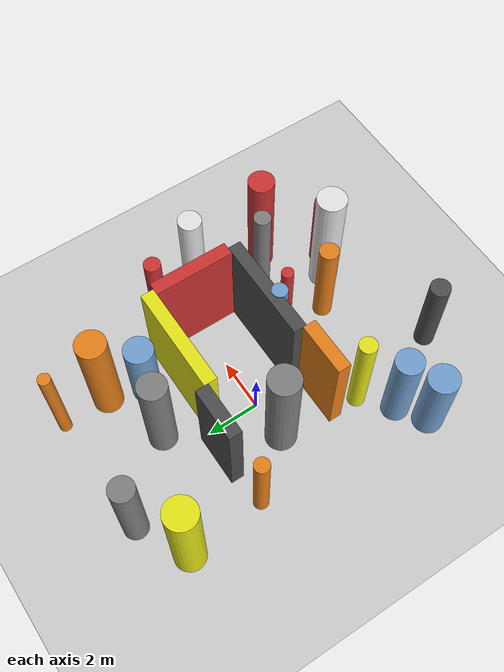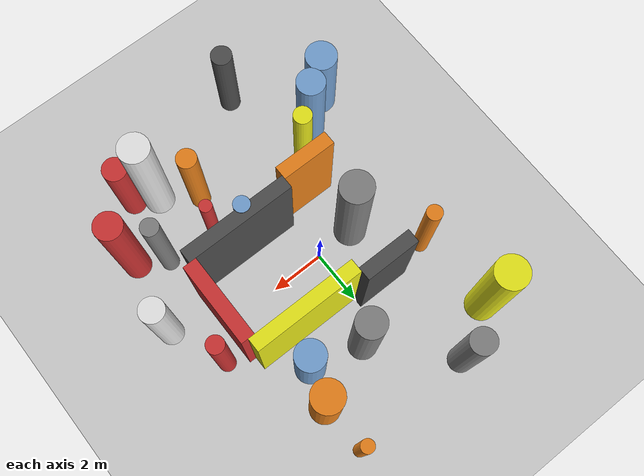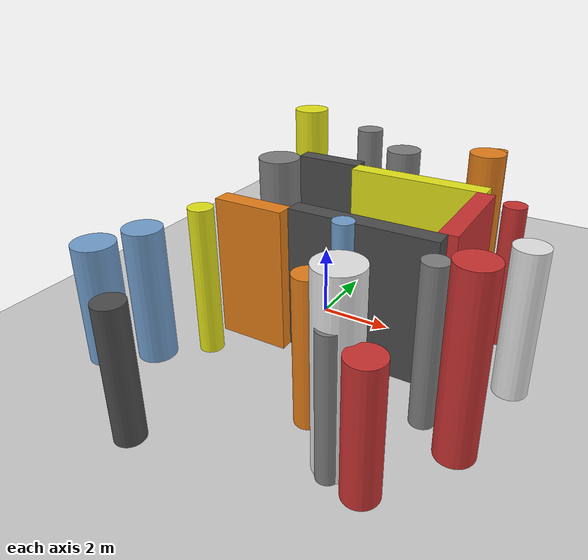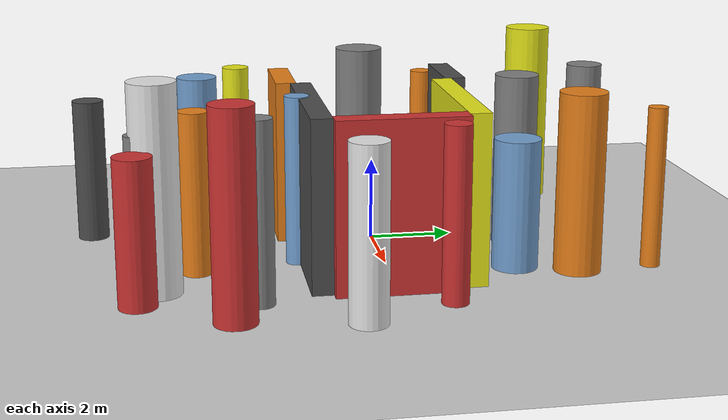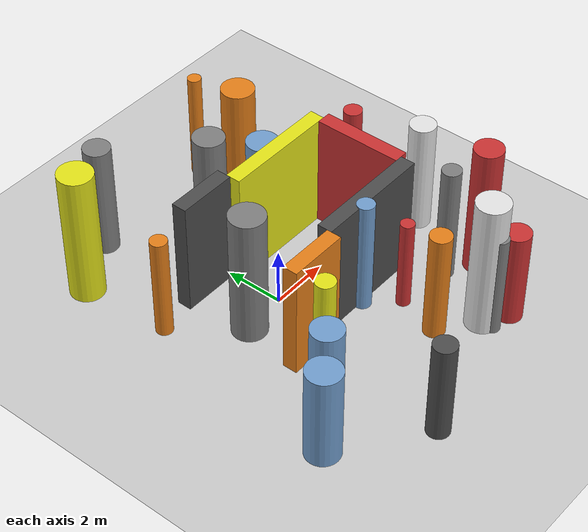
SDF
<?xml version='1.0'?>
<sdf version='1.6'>
  <world name='routeA_rl_v1__dense_recovery__rl_test__cul_de_sac_trap__000039'>
    <!-- Sun light -->
    <light name='sun' type='directional'>
      <cast_shadows>1</cast_shadows>
      <pose>0 0 10 0 0 0</pose>
      <diffuse>0.8 0.8 0.8 1</diffuse>
      <specular>0.2 0.2 0.2 1</specular>
      <attenuation>
        <range>1000</range>
        <constant>0.9</constant>
        <linear>0.01</linear>
        <quadratic>0.001</quadratic>
      </attenuation>
      <direction>-0.5 0.1 -0.9</direction>
    </light>

    <!-- Ground plane -->
    <model name='ground_plane'>
      <static>1</static>
      <link name='link'>
        <collision name='collision'>
          <geometry>
            <plane>
              <normal>0 0 1</normal>
              <size>100 100</size>
            </plane>
          </geometry>
          <surface>
            <contact>
              <collide_bitmask>65535</collide_bitmask>
              <ode/>
            </contact>
            <friction>
              <ode>
                <mu>100</mu>
                <mu2>50</mu2>
              </ode>
              <torsional><ode/></torsional>
            </friction>
            <bounce/>
          </surface>
          <max_contacts>10</max_contacts>
        </collision>
        <visual name='visual'>
          <cast_shadows>0</cast_shadows>
          <geometry>
            <plane>
              <normal>0 0 1</normal>
              <size>100 100</size>
            </plane>
          </geometry>
          <material>
            <script>
              <uri>file://media/materials/scripts/gazebo.material</uri>
              <n>Gazebo/Grey</n>
            </script>
          </material>
        </visual>
      </link>
    </model>

    <!-- Environment -->
    <magnetic_field>6e-06 2.3e-05 -4.2e-05</magnetic_field>
    <atmosphere type='adiabatic'/>
    <physics name='default_physics' default='0' type='ode'>
      <gravity>0 0 -9.8</gravity>
      <max_step_size>0.004</max_step_size>
      <real_time_factor>1</real_time_factor>
      <real_time_update_rate>250</real_time_update_rate>
    </physics>
    <scene>
      <ambient>0.4 0.4 0.4 1</ambient>
      <background>0.7 0.7 0.7 1</background>
      <shadows>1</shadows>
    </scene>
    <wind/>
    <spherical_coordinates>
      <surface_model>EARTH_WGS84</surface_model>
      <latitude_deg>0</latitude_deg>
      <longitude_deg>0</longitude_deg>
      <elevation>0</elevation>
      <heading_deg>0</heading_deg>
    </spherical_coordinates>

    <!-- ============ OBSTACLES (27) ============ -->
    <model name='trap_side_l'>
      <static>1</static>
      <link name='link'>
        <visual name='visual'>
          <geometry>
            <box>
              <size>4.0000 0.5000 4.0000</size>
            </box>
          </geometry>
          <material>
            <script>
              <n>Gazebo/DarkGrey</n>
              <uri>file://media/materials/scripts/gazebo.material</uri>
            </script>
            <ambient>0.3 0.3 0.3 1</ambient>
          </material>
        </visual>
        <collision name='collision'>
          <geometry>
            <box>
              <size>4.0000 0.5000 4.0000</size>
            </box>
          </geometry>
          <max_contacts>10</max_contacts>
          <surface>
            <contact><ode/></contact>
            <bounce/>
            <friction>
              <ode><mu>1</mu><mu2>1</mu2></ode>
              <torsional><ode/></torsional>
            </friction>
          </surface>
        </collision>
      </link>
      <pose>2.0000 -1.7500 2.0000 0 0 0.0000</pose>
    </model>

    <model name='trap_side_r'>
      <static>1</static>
      <link name='link'>
        <visual name='visual'>
          <geometry>
            <box>
              <size>4.0000 0.5000 4.0000</size>
            </box>
          </geometry>
          <material>
            <script>
              <n>Gazebo/Yellow</n>
              <uri>file://media/materials/scripts/gazebo.material</uri>
            </script>
            <ambient>0.9 0.9 0.1 1</ambient>
          </material>
        </visual>
        <collision name='collision'>
          <geometry>
            <box>
              <size>4.0000 0.5000 4.0000</size>
            </box>
          </geometry>
          <max_contacts>10</max_contacts>
          <surface>
            <contact><ode/></contact>
            <bounce/>
            <friction>
              <ode><mu>1</mu><mu2>1</mu2></ode>
              <torsional><ode/></torsional>
            </friction>
          </surface>
        </collision>
      </link>
      <pose>2.0000 1.7500 2.0000 0 0 0.0000</pose>
    </model>

    <model name='trap_back'>
      <static>1</static>
      <link name='link'>
        <visual name='visual'>
          <geometry>
            <box>
              <size>0.5000 3.0000 4.0000</size>
            </box>
          </geometry>
          <material>
            <script>
              <n>Gazebo/Red</n>
              <uri>file://media/materials/scripts/gazebo.material</uri>
            </script>
            <ambient>0.8 0.2 0.2 1</ambient>
          </material>
        </visual>
        <collision name='collision'>
          <geometry>
            <box>
              <size>0.5000 3.0000 4.0000</size>
            </box>
          </geometry>
          <max_contacts>10</max_contacts>
          <surface>
            <contact><ode/></contact>
            <bounce/>
            <friction>
              <ode><mu>1</mu><mu2>1</mu2></ode>
              <torsional><ode/></torsional>
            </friction>
          </surface>
        </collision>
      </link>
      <pose>4.0000 0.0000 2.0000 0 0 0.0000</pose>
    </model>

    <model name='trap_funnel_l'>
      <static>1</static>
      <link name='link'>
        <visual name='visual'>
          <geometry>
            <box>
              <size>2.0000 0.5000 4.0000</size>
            </box>
          </geometry>
          <material>
            <script>
              <n>Gazebo/Orange</n>
              <uri>file://media/materials/scripts/gazebo.material</uri>
            </script>
            <ambient>0.9 0.5 0.1 1</ambient>
          </material>
        </visual>
        <collision name='collision'>
          <geometry>
            <box>
              <size>2.0000 0.5000 4.0000</size>
            </box>
          </geometry>
          <max_contacts>10</max_contacts>
          <surface>
            <contact><ode/></contact>
            <bounce/>
            <friction>
              <ode><mu>1</mu><mu2>1</mu2></ode>
              <torsional><ode/></torsional>
            </friction>
          </surface>
        </collision>
      </link>
      <pose>-1.0000 -2.1000 2.0000 0 0 0.0000</pose>
    </model>

    <model name='trap_funnel_r'>
      <static>1</static>
      <link name='link'>
        <visual name='visual'>
          <geometry>
            <box>
              <size>2.0000 0.5000 4.0000</size>
            </box>
          </geometry>
          <material>
            <script>
              <n>Gazebo/DarkGrey</n>
              <uri>file://media/materials/scripts/gazebo.material</uri>
            </script>
            <ambient>0.3 0.3 0.3 1</ambient>
          </material>
        </visual>
        <collision name='collision'>
          <geometry>
            <box>
              <size>2.0000 0.5000 4.0000</size>
            </box>
          </geometry>
          <max_contacts>10</max_contacts>
          <surface>
            <contact><ode/></contact>
            <bounce/>
            <friction>
              <ode><mu>1</mu><mu2>1</mu2></ode>
              <torsional><ode/></torsional>
            </friction>
          </surface>
        </collision>
      </link>
      <pose>-1.0000 2.1000 2.0000 0 0 0.0000</pose>
    </model>

    <model name='trap_scatter_0'>
      <static>1</static>
      <link name='link'>
        <visual name='visual'>
          <geometry>
            <cylinder>
              <radius>0.5256</radius>
              <length>4.2098</length>
            </cylinder>
          </geometry>
          <material>
            <script>
              <n>Gazebo/Grey</n>
              <uri>file://media/materials/scripts/gazebo.material</uri>
            </script>
            <ambient>0.5 0.5 0.5 1</ambient>
          </material>
        </visual>
        <collision name='collision'>
          <geometry>
            <cylinder>
              <radius>0.5256</radius>
              <length>4.2098</length>
            </cylinder>
          </geometry>
          <max_contacts>10</max_contacts>
          <surface>
            <contact><ode/></contact>
            <bounce/>
            <friction>
              <ode><mu>1</mu><mu2>1</mu2></ode>
              <torsional><ode/></torsional>
            </friction>
          </surface>
        </collision>
      </link>
      <pose>0.8173 3.4344 2.1049 0 0 0.0000</pose>
    </model>

    <model name='trap_scatter_1'>
      <static>1</static>
      <link name='link'>
        <visual name='visual'>
          <geometry>
            <cylinder>
              <radius>0.3777</radius>
              <length>3.4947</length>
            </cylinder>
          </geometry>
          <material>
            <script>
              <n>Gazebo/DarkGrey</n>
              <uri>file://media/materials/scripts/gazebo.material</uri>
            </script>
            <ambient>0.3 0.3 0.3 1</ambient>
          </material>
        </visual>
        <collision name='collision'>
          <geometry>
            <cylinder>
              <radius>0.3777</radius>
              <length>3.4947</length>
            </cylinder>
          </geometry>
          <max_contacts>10</max_contacts>
          <surface>
            <contact><ode/></contact>
            <bounce/>
            <friction>
              <ode><mu>1</mu><mu2>1</mu2></ode>
              <torsional><ode/></torsional>
            </friction>
          </surface>
        </collision>
      </link>
      <pose>-1.1409 -6.8791 1.7473 0 0 0.0000</pose>
    </model>

    <model name='trap_scatter_2'>
      <static>1</static>
      <link name='link'>
        <visual name='visual'>
          <geometry>
            <cylinder>
              <radius>0.2307</radius>
              <length>3.8137</length>
            </cylinder>
          </geometry>
          <material>
            <script>
              <n>Gazebo/Orange</n>
              <uri>file://media/materials/scripts/gazebo.material</uri>
            </script>
            <ambient>0.9 0.5 0.1 1</ambient>
          </material>
        </visual>
        <collision name='collision'>
          <geometry>
            <cylinder>
              <radius>0.2307</radius>
              <length>3.8137</length>
            </cylinder>
          </geometry>
          <max_contacts>10</max_contacts>
          <surface>
            <contact><ode/></contact>
            <bounce/>
            <friction>
              <ode><mu>1</mu><mu2>1</mu2></ode>
              <torsional><ode/></torsional>
            </friction>
          </surface>
        </collision>
      </link>
      <pose>3.1472 6.1346 1.9068 0 0 0.0000</pose>
    </model>

    <model name='trap_scatter_3'>
      <static>1</static>
      <link name='link'>
        <visual name='visual'>
          <geometry>
            <cylinder>
              <radius>0.5676</radius>
              <length>3.3198</length>
            </cylinder>
          </geometry>
          <material>
            <script>
              <n>Gazebo/Blue</n>
              <uri>file://media/materials/scripts/gazebo.material</uri>
            </script>
            <ambient>0.447 0.624 0.812 1</ambient>
          </material>
        </visual>
        <collision name='collision'>
          <geometry>
            <cylinder>
              <radius>0.5676</radius>
              <length>3.3198</length>
            </cylinder>
          </geometry>
          <max_contacts>10</max_contacts>
          <surface>
            <contact><ode/></contact>
            <bounce/>
            <friction>
              <ode><mu>1</mu><mu2>1</mu2></ode>
              <torsional><ode/></torsional>
            </friction>
          </surface>
        </collision>
      </link>
      <pose>-3.8721 -4.8515 1.6599 0 0 0.0000</pose>
    </model>

    <model name='trap_scatter_6'>
      <static>1</static>
      <link name='link'>
        <visual name='visual'>
          <geometry>
            <cylinder>
              <radius>0.5536</radius>
              <length>4.2390</length>
            </cylinder>
          </geometry>
          <material>
            <script>
              <n>Gazebo/Orange</n>
              <uri>file://media/materials/scripts/gazebo.material</uri>
            </script>
            <ambient>0.9 0.5 0.1 1</ambient>
          </material>
        </visual>
        <collision name='collision'>
          <geometry>
            <cylinder>
              <radius>0.5536</radius>
              <length>4.2390</length>
            </cylinder>
          </geometry>
          <max_contacts>10</max_contacts>
          <surface>
            <contact><ode/></contact>
            <bounce/>
            <friction>
              <ode><mu>1</mu><mu2>1</mu2></ode>
              <torsional><ode/></torsional>
            </friction>
          </surface>
        </collision>
      </link>
      <pose>3.2012 4.3274 2.1195 0 0 0.0000</pose>
    </model>

    <model name='trap_scatter_7'>
      <static>1</static>
      <link name='link'>
        <visual name='visual'>
          <geometry>
            <cylinder>
              <radius>0.4380</radius>
              <length>3.9386</length>
            </cylinder>
          </geometry>
          <material>
            <script>
              <n>Gazebo/White</n>
              <uri>file://media/materials/scripts/gazebo.material</uri>
            </script>
            <ambient>0.9 0.9 0.9 1</ambient>
          </material>
        </visual>
        <collision name='collision'>
          <geometry>
            <cylinder>
              <radius>0.4380</radius>
              <length>3.9386</length>
            </cylinder>
          </geometry>
          <max_contacts>10</max_contacts>
          <surface>
            <contact><ode/></contact>
            <bounce/>
            <friction>
              <ode><mu>1</mu><mu2>1</mu2></ode>
              <torsional><ode/></torsional>
            </friction>
          </surface>
        </collision>
      </link>
      <pose>5.7715 -1.0243 1.9693 0 0 0.0000</pose>
    </model>

    <model name='trap_scatter_8'>
      <static>1</static>
      <link name='link'>
        <visual name='visual'>
          <geometry>
            <cylinder>
              <radius>0.3270</radius>
              <length>4.1051</length>
            </cylinder>
          </geometry>
          <material>
            <script>
              <n>Gazebo/Yellow</n>
              <uri>file://media/materials/scripts/gazebo.material</uri>
            </script>
            <ambient>0.9 0.9 0.1 1</ambient>
          </material>
        </visual>
        <collision name='collision'>
          <geometry>
            <cylinder>
              <radius>0.3270</radius>
              <length>4.1051</length>
            </cylinder>
          </geometry>
          <max_contacts>10</max_contacts>
          <surface>
            <contact><ode/></contact>
            <bounce/>
            <friction>
              <ode><mu>1</mu><mu2>1</mu2></ode>
              <torsional><ode/></torsional>
            </friction>
          </surface>
        </collision>
      </link>
      <pose>-1.7762 -3.2027 2.0525 0 0 0.0000</pose>
    </model>

    <model name='trap_scatter_9'>
      <static>1</static>
      <link name='link'>
        <visual name='visual'>
          <geometry>
            <cylinder>
              <radius>0.4860</radius>
              <length>4.6791</length>
            </cylinder>
          </geometry>
          <material>
            <script>
              <n>Gazebo/Red</n>
              <uri>file://media/materials/scripts/gazebo.material</uri>
            </script>
            <ambient>0.8 0.2 0.2 1</ambient>
          </material>
        </visual>
        <collision name='collision'>
          <geometry>
            <cylinder>
              <radius>0.4860</radius>
              <length>4.6791</length>
            </cylinder>
          </geometry>
          <max_contacts>10</max_contacts>
          <surface>
            <contact><ode/></contact>
            <bounce/>
            <friction>
              <ode><mu>1</mu><mu2>1</mu2></ode>
              <torsional><ode/></torsional>
            </friction>
          </surface>
        </collision>
      </link>
      <pose>5.2983 -3.7576 2.3396 0 0 0.0000</pose>
    </model>

    <model name='trap_scatter_10'>
      <static>1</static>
      <link name='link'>
        <visual name='visual'>
          <geometry>
            <cylinder>
              <radius>0.2918</radius>
              <length>4.0246</length>
            </cylinder>
          </geometry>
          <material>
            <script>
              <n>Gazebo/Blue</n>
              <uri>file://media/materials/scripts/gazebo.material</uri>
            </script>
            <ambient>0.447 0.624 0.812 1</ambient>
          </material>
        </visual>
        <collision name='collision'>
          <geometry>
            <cylinder>
              <radius>0.2918</radius>
              <length>4.0246</length>
            </cylinder>
          </geometry>
          <max_contacts>10</max_contacts>
          <surface>
            <contact><ode/></contact>
            <bounce/>
            <friction>
              <ode><mu>1</mu><mu2>1</mu2></ode>
              <torsional><ode/></torsional>
            </friction>
          </surface>
        </collision>
      </link>
      <pose>1.5930 -2.0235 2.0123 0 0 0.0000</pose>
    </model>

    <model name='trap_scatter_11'>
      <static>1</static>
      <link name='link'>
        <visual name='visual'>
          <geometry>
            <cylinder>
              <radius>0.2811</radius>
              <length>3.6220</length>
            </cylinder>
          </geometry>
          <material>
            <script>
              <n>Gazebo/Orange</n>
              <uri>file://media/materials/scripts/gazebo.material</uri>
            </script>
            <ambient>0.9 0.5 0.1 1</ambient>
          </material>
        </visual>
        <collision name='collision'>
          <geometry>
            <cylinder>
              <radius>0.2811</radius>
              <length>3.6220</length>
            </cylinder>
          </geometry>
          <max_contacts>10</max_contacts>
          <surface>
            <contact><ode/></contact>
            <bounce/>
            <friction>
              <ode><mu>1</mu><mu2>1</mu2></ode>
              <torsional><ode/></torsional>
            </friction>
          </surface>
        </collision>
      </link>
      <pose>-3.1302 1.8821 1.8110 0 0 0.0000</pose>
    </model>

    <model name='trap_scatter_12'>
      <static>1</static>
      <link name='link'>
        <visual name='visual'>
          <geometry>
            <cylinder>
              <radius>0.5430</radius>
              <length>3.1006</length>
            </cylinder>
          </geometry>
          <material>
            <script>
              <n>Gazebo/Blue</n>
              <uri>file://media/materials/scripts/gazebo.material</uri>
            </script>
            <ambient>0.447 0.624 0.812 1</ambient>
          </material>
        </visual>
        <collision name='collision'>
          <geometry>
            <cylinder>
              <radius>0.5430</radius>
              <length>3.1006</length>
            </cylinder>
          </geometry>
          <max_contacts>10</max_contacts>
          <surface>
            <contact><ode/></contact>
            <bounce/>
            <friction>
              <ode><mu>1</mu><mu2>1</mu2></ode>
              <torsional><ode/></torsional>
            </friction>
          </surface>
        </collision>
      </link>
      <pose>2.7537 2.9473 1.5503 0 0 0.0000</pose>
    </model>

    <model name='trap_scatter_13'>
      <static>1</static>
      <link name='link'>
        <visual name='visual'>
          <geometry>
            <cylinder>
              <radius>0.5832</radius>
              <length>4.5730</length>
            </cylinder>
          </geometry>
          <material>
            <script>
              <n>Gazebo/Grey</n>
              <uri>file://media/materials/scripts/gazebo.material</uri>
            </script>
            <ambient>0.5 0.5 0.5 1</ambient>
          </material>
        </visual>
        <collision name='collision'>
          <geometry>
            <cylinder>
              <radius>0.5832</radius>
              <length>4.5730</length>
            </cylinder>
          </geometry>
          <max_contacts>10</max_contacts>
          <surface>
            <contact><ode/></contact>
            <bounce/>
            <friction>
              <ode><mu>1</mu><mu2>1</mu2></ode>
              <torsional><ode/></torsional>
            </friction>
          </surface>
        </collision>
      </link>
      <pose>-1.4706 -0.0877 2.2865 0 0 0.0000</pose>
    </model>

    <model name='trap_scatter_14'>
      <static>1</static>
      <link name='link'>
        <visual name='visual'>
          <geometry>
            <cylinder>
              <radius>0.3591</radius>
              <length>3.8409</length>
            </cylinder>
          </geometry>
          <material>
            <script>
              <n>Gazebo/Orange</n>
              <uri>file://media/materials/scripts/gazebo.material</uri>
            </script>
            <ambient>0.9 0.5 0.1 1</ambient>
          </material>
        </visual>
        <collision name='collision'>
          <geometry>
            <cylinder>
              <radius>0.3591</radius>
              <length>3.8409</length>
            </cylinder>
          </geometry>
          <max_contacts>10</max_contacts>
          <surface>
            <contact><ode/></contact>
            <bounce/>
            <friction>
              <ode><mu>1</mu><mu2>1</mu2></ode>
              <torsional><ode/></torsional>
            </friction>
          </surface>
        </collision>
      </link>
      <pose>2.0347 -4.4212 1.9204 0 0 0.0000</pose>
    </model>

    <model name='trap_scatter_15'>
      <static>1</static>
      <link name='link'>
        <visual name='visual'>
          <geometry>
            <cylinder>
              <radius>0.5777</radius>
              <length>4.6934</length>
            </cylinder>
          </geometry>
          <material>
            <script>
              <n>Gazebo/Yellow</n>
              <uri>file://media/materials/scripts/gazebo.material</uri>
            </script>
            <ambient>0.9 0.9 0.1 1</ambient>
          </material>
        </visual>
        <collision name='collision'>
          <geometry>
            <cylinder>
              <radius>0.5777</radius>
              <length>4.6934</length>
            </cylinder>
          </geometry>
          <max_contacts>10</max_contacts>
          <surface>
            <contact><ode/></contact>
            <bounce/>
            <friction>
              <ode><mu>1</mu><mu2>1</mu2></ode>
              <torsional><ode/></torsional>
            </friction>
          </surface>
        </collision>
      </link>
      <pose>-3.3665 4.9035 2.3467 0 0 0.0000</pose>
    </model>

    <model name='trap_scatter_17'>
      <static>1</static>
      <link name='link'>
        <visual name='visual'>
          <geometry>
            <cylinder>
              <radius>0.3080</radius>
              <length>4.0088</length>
            </cylinder>
          </geometry>
          <material>
            <script>
              <n>Gazebo/Red</n>
              <uri>file://media/materials/scripts/gazebo.material</uri>
            </script>
            <ambient>0.8 0.2 0.2 1</ambient>
          </material>
        </visual>
        <collision name='collision'>
          <geometry>
            <cylinder>
              <radius>0.3080</radius>
              <length>4.0088</length>
            </cylinder>
          </geometry>
          <max_contacts>10</max_contacts>
          <surface>
            <contact><ode/></contact>
            <bounce/>
            <friction>
              <ode><mu>1</mu><mu2>1</mu2></ode>
              <torsional><ode/></torsional>
            </friction>
          </surface>
        </collision>
      </link>
      <pose>4.8789 1.0308 2.0044 0 0 0.0000</pose>
    </model>

    <model name='trap_scatter_18'>
      <static>1</static>
      <link name='link'>
        <visual name='visual'>
          <geometry>
            <cylinder>
              <radius>0.5463</radius>
              <length>4.7897</length>
            </cylinder>
          </geometry>
          <material>
            <script>
              <n>Gazebo/White</n>
              <uri>file://media/materials/scripts/gazebo.material</uri>
            </script>
            <ambient>0.9 0.9 0.9 1</ambient>
          </material>
        </visual>
        <collision name='collision'>
          <geometry>
            <cylinder>
              <radius>0.5463</radius>
              <length>4.7897</length>
            </cylinder>
          </geometry>
          <max_contacts>10</max_contacts>
          <surface>
            <contact><ode/></contact>
            <bounce/>
            <friction>
              <ode><mu>1</mu><mu2>1</mu2></ode>
              <torsional><ode/></torsional>
            </friction>
          </surface>
        </collision>
      </link>
      <pose>3.2429 -5.3233 2.3949 0 0 0.0000</pose>
    </model>

    <model name='trap_scatter_19'>
      <static>1</static>
      <link name='link'>
        <visual name='visual'>
          <geometry>
            <cylinder>
              <radius>0.2303</radius>
              <length>3.2137</length>
            </cylinder>
          </geometry>
          <material>
            <script>
              <n>Gazebo/Red</n>
              <uri>file://media/materials/scripts/gazebo.material</uri>
            </script>
            <ambient>0.8 0.2 0.2 1</ambient>
          </material>
        </visual>
        <collision name='collision'>
          <geometry>
            <cylinder>
              <radius>0.2303</radius>
              <length>3.2137</length>
            </cylinder>
          </geometry>
          <max_contacts>10</max_contacts>
          <surface>
            <contact><ode/></contact>
            <bounce/>
            <friction>
              <ode><mu>1</mu><mu2>1</mu2></ode>
              <torsional><ode/></torsional>
            </friction>
          </surface>
        </collision>
      </link>
      <pose>2.4314 -2.9618 1.6069 0 0 0.0000</pose>
    </model>

    <model name='trap_scatter_20'>
      <static>1</static>
      <link name='link'>
        <visual name='visual'>
          <geometry>
            <cylinder>
              <radius>0.2747</radius>
              <length>3.6222</length>
            </cylinder>
          </geometry>
          <material>
            <script>
              <n>Gazebo/Grey</n>
              <uri>file://media/materials/scripts/gazebo.material</uri>
            </script>
            <ambient>0.5 0.5 0.5 1</ambient>
          </material>
        </visual>
        <collision name='collision'>
          <geometry>
            <cylinder>
              <radius>0.2747</radius>
              <length>3.6222</length>
            </cylinder>
          </geometry>
          <max_contacts>10</max_contacts>
          <surface>
            <contact><ode/></contact>
            <bounce/>
            <friction>
              <ode><mu>1</mu><mu2>1</mu2></ode>
              <torsional><ode/></torsional>
            </friction>
          </surface>
        </collision>
      </link>
      <pose>3.2426 -5.6930 1.8111 0 0 0.0000</pose>
    </model>

    <model name='trap_scatter_21'>
      <static>1</static>
      <link name='link'>
        <visual name='visual'>
          <geometry>
            <cylinder>
              <radius>0.4531</radius>
              <length>3.9688</length>
            </cylinder>
          </geometry>
          <material>
            <script>
              <n>Gazebo/Grey</n>
              <uri>file://media/materials/scripts/gazebo.material</uri>
            </script>
            <ambient>0.5 0.5 0.5 1</ambient>
          </material>
        </visual>
        <collision name='collision'>
          <geometry>
            <cylinder>
              <radius>0.4531</radius>
              <length>3.9688</length>
            </cylinder>
          </geometry>
          <max_contacts>10</max_contacts>
          <surface>
            <contact><ode/></contact>
            <bounce/>
            <friction>
              <ode><mu>1</mu><mu2>1</mu2></ode>
              <torsional><ode/></torsional>
            </friction>
          </surface>
        </collision>
      </link>
      <pose>-1.5169 5.9254 1.9844 0 0 0.0000</pose>
    </model>

    <model name='trap_scatter_22'>
      <static>1</static>
      <link name='link'>
        <visual name='visual'>
          <geometry>
            <cylinder>
              <radius>0.5155</radius>
              <length>3.6725</length>
            </cylinder>
          </geometry>
          <material>
            <script>
              <n>Gazebo/Blue</n>
              <uri>file://media/materials/scripts/gazebo.material</uri>
            </script>
            <ambient>0.447 0.624 0.812 1</ambient>
          </material>
        </visual>
        <collision name='collision'>
          <geometry>
            <cylinder>
              <radius>0.5155</radius>
              <length>3.6725</length>
            </cylinder>
          </geometry>
          <max_contacts>10</max_contacts>
          <surface>
            <contact><ode/></contact>
            <bounce/>
            <friction>
              <ode><mu>1</mu><mu2>1</mu2></ode>
              <torsional><ode/></torsional>
            </friction>
          </surface>
        </collision>
      </link>
      <pose>-2.8637 -4.1491 1.8362 0 0 0.0000</pose>
    </model>

    <model name='trap_scatter_23'>
      <static>1</static>
      <link name='link'>
        <visual name='visual'>
          <geometry>
            <cylinder>
              <radius>0.4334</radius>
              <length>3.3529</length>
            </cylinder>
          </geometry>
          <material>
            <script>
              <n>Gazebo/Red</n>
              <uri>file://media/materials/scripts/gazebo.material</uri>
            </script>
            <ambient>0.8 0.2 0.2 1</ambient>
          </material>
        </visual>
        <collision name='collision'>
          <geometry>
            <cylinder>
              <radius>0.4334</radius>
              <length>3.3529</length>
            </cylinder>
          </geometry>
          <max_contacts>10</max_contacts>
          <surface>
            <contact><ode/></contact>
            <bounce/>
            <friction>
              <ode><mu>1</mu><mu2>1</mu2></ode>
              <torsional><ode/></torsional>
            </friction>
          </surface>
        </collision>
      </link>
      <pose>4.0437 -5.7774 1.6765 0 0 0.0000</pose>
    </model>

    <model name='trap_scatter_24'>
      <static>1</static>
      <link name='link'>
        <visual name='visual'>
          <geometry>
            <cylinder>
              <radius>0.3187</radius>
              <length>4.1509</length>
            </cylinder>
          </geometry>
          <material>
            <script>
              <n>Gazebo/Grey</n>
              <uri>file://media/materials/scripts/gazebo.material</uri>
            </script>
            <ambient>0.5 0.5 0.5 1</ambient>
          </material>
        </visual>
        <collision name='collision'>
          <geometry>
            <cylinder>
              <radius>0.3187</radius>
              <length>4.1509</length>
            </cylinder>
          </geometry>
          <max_contacts>10</max_contacts>
          <surface>
            <contact><ode/></contact>
            <bounce/>
            <friction>
              <ode><mu>1</mu><mu2>1</mu2></ode>
              <torsional><ode/></torsional>
            </friction>
          </surface>
        </collision>
      </link>
      <pose>4.3101 -3.1458 2.0755 0 0 0.0000</pose>
    </model>

    <!-- GUI camera -->
    <gui fullscreen='0'>
      <camera name='user_camera'>
        <pose>-15 0 18 0 0.85 0.15</pose>
        <view_controller>orbit</view_controller>
        <projection_type>perspective</projection_type>
      </camera>
    </gui>
  </world>
</sdf>
